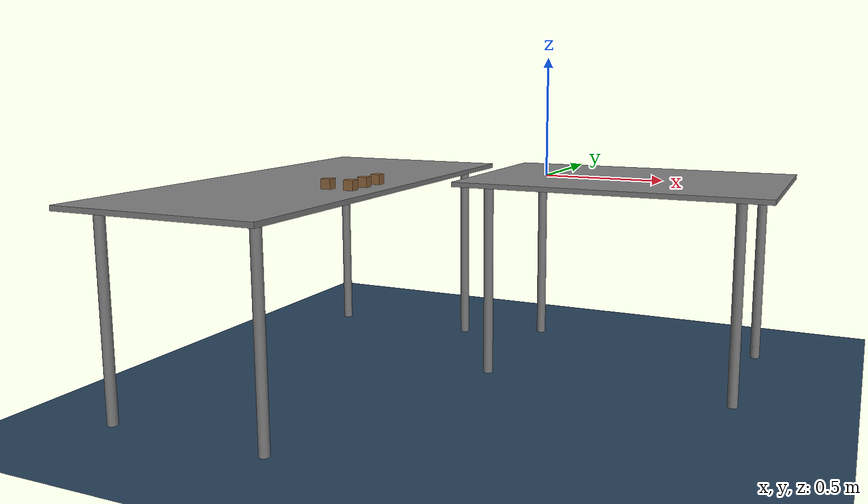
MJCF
<mujoco model="tableworld">
    <!-- Compiler settings: Defines the Euler sequence for rotations and scene statistics -->
    <compiler eulerseq="XYZ"/>
    <statistic center="0.3 0 0.4" extent="0.8"/>

    <!-- Visual settings: Defines lighting, haze, and rendering resolution -->
    <visual>
        <headlight diffuse="0.6 0.6 0.6" ambient="0.1 0.1 0.1"/> <!-- Headlight settings -->
        <rgba haze="0.15 0.25 0.35 1"/> <!-- Haze color and intensity -->
        <global azimuth="120" elevation="-20" offwidth="1280" offheight="720"/> <!-- Camera and framebuffer settings -->
    </visual>

    <!-- Asset definitions: Textures and materials used in the simulation -->
    <asset>
        <!-- Skybox gradient texture -->
        <texture type="skybox" builtin="gradient" rgb1="0.3 0.5 0.7" rgb2="0 0 0" width="512" height="3072"/>

        <!-- Ground texture -->
        <texture type="2d" name="groundplane" builtin="checker" mark="edge" rgb1="0.2 0.3 0.4" rgb2="0.1 0.2 0.3" markrgb="0.8 0.8 0.8" width="300" height="300"/>
        <material name="groundplane" texture="groundplane" texuniform="true" texrepeat="5 5" reflectance="0.2"/>

        <!-- Wood texture -->
        <texture name="wood" file="wood.png" type="2d"/>
        <material name="wood_material" texture="wood" texrepeat="50 50" texuniform="true" rgba="0.8 0.8 0.8 1"/>
    </asset>

    <!-- World body: Defines the physical objects and layout of the scene -->
    <worldbody>
        <!-- Light source -->
        <light pos="0 0 1.5" dir="0 0 -1" directional="true"/>

        <!-- Floor geometry -->
        <geom name="floor" pos="0.0 0.0 -0.8" size="0 0 0.05" type="plane" material="groundplane"/>

        <!-- Table 1 -->
        <body name="table1" pos="0.365 0 -0.005">
            <geom name="table1_top" type="box" size="0.625 0.42 0.01" pos="0 0 0"/> <!-- Tabletop -->
            <geom name="table1_leg_1" type="cylinder" size=".02 .4" pos=".5 -.33 -.4" euler="0 0 0"/> <!-- Leg 1 -->
            <geom name="table1_leg_2" type="cylinder" size=".02 .4" pos=".5 .33 -.4" euler="0 0 0"/> <!-- Leg 2 -->
            <geom name="table1_leg_3" type="cylinder" size=".02 .4" pos="-.5 -.33 -.4" euler="0 0 0"/> <!-- Leg 3 -->
            <geom name="table1_leg_4" type="cylinder" size=".02 .4" pos="-.5 .33 -.4" euler="0 0 0"/> <!-- Leg 4 -->
        </body>

        <!-- Table 2 -->
        <body name="table2" pos="-0.805 -0.615 -0.005">
            <geom name="table2_top" type="box" size="0.42 0.925 0.01" pos="0 0 0"/> <!-- Tabletop -->
            <geom name="table2_leg_1" type="cylinder" size=".02 .4" pos=".33 -.8 -.4" euler="0 0 0"/> <!-- Leg 1 -->
            <geom name="table2_leg_2" type="cylinder" size=".02 .4" pos=".33 .8 -.4" euler="0 0 0"/> <!-- Leg 2 -->
            <geom name="table2_leg_3" type="cylinder" size=".02 .4" pos="-.33 -.8 -.4" euler="0 0 0"/> <!-- Leg 3 -->
            <geom name="table2_leg_4" type="cylinder" size=".02 .4" pos="-.33 .8 -.4" euler="0 0 0"/> <!-- Leg 4 -->
        </body>

        <!-- dishs representing 'X' -->
        <body name="dish0" pos="-0.5 -0.8 0.025" quat="0. 0. 1. 0.">
            <freejoint name="dish0_fj"/> <!-- Free joint for movement -->
            <geom type="box" size=".02 .02 .02" material="wood_material"/> <!-- dish geometry -->
        </body>
        <body name="dish1" pos="-0.5 -0.7 0.025" quat="0. 0. 1. 0.">
            <freejoint name="dish1_fj"/>
            <geom type="box" size=".02 .02 .02" material="wood_material"/>
        </body>
        <body name="dish2" pos="-0.5 -0.6 0.025" quat="0. 0. 1. 0.">
            <freejoint name="dish2_fj"/>
            <geom type="box" size=".02 .02 .02" material="wood_material"/>
        </body>
        <body name="dish3" pos="-0.6 -0.8 0.025" quat="0. 0. 1. 0.">
            <freejoint name="dish3_fj"/>
            <geom type="box" size=".02 .02 .02" material="wood_material"/>
        </body>

        <!-- Cameras -->
        <camera name="top-right" pos="1.3 -1.5 1.1" euler="1 0 1.1"/> <!-- Top-right camera -->
        <camera name="robot-cam" pos="1.3 -1.5 1.1" euler="1 0 1.1" fovy="60"/> <!-- Robot camera -->
    </worldbody>
</mujoco>
